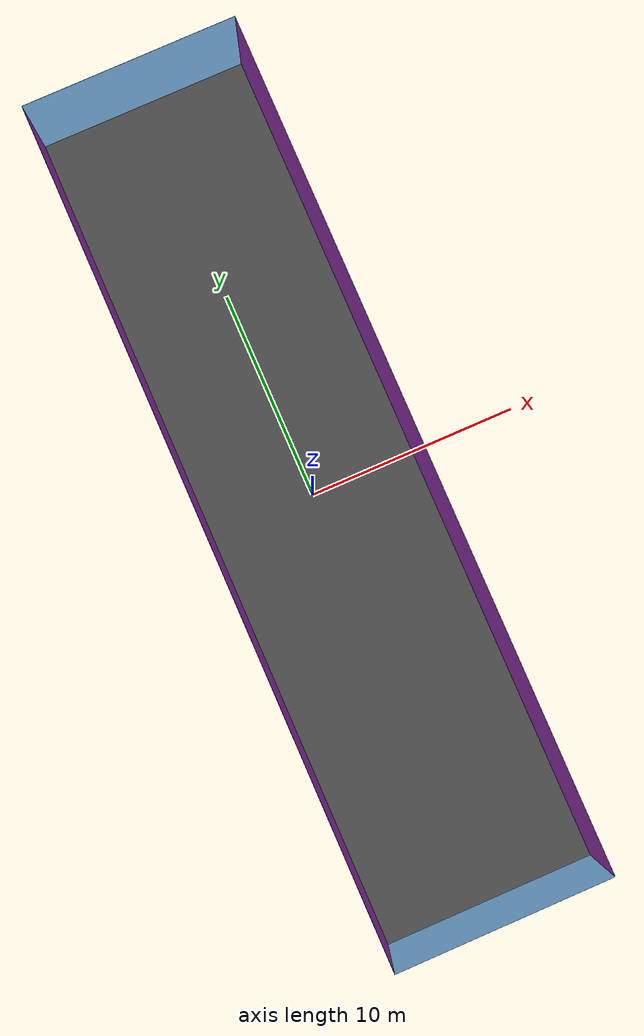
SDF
<sdf version="1.4">
 <world name="default">
  <include><uri>model://sun</uri></include>
  <model name="race_field">
   <static>true</static>
   <link name="field">
    <collision name="ground">
     <geometry><plane><normal>0 0 1</normal><size>10 40</size></plane></geometry>
    </collision>
    <collision name="wall0">
     <pose>-5 0 3 0 1.5707963 0</pose>
     <geometry><box><size>6 40 0.001</size></box></geometry>
    </collision>
    <collision name="wall1">
     <pose>0 20 3 1.5707963 1.5707963 0</pose>
     <geometry><box><size>6 10 0.001</size></box></geometry>
    </collision>
    <collision name="wall2">
     <pose>5 0 3 0 1.5707963 0</pose>
     <geometry><box><size>6 40 0.001</size></box></geometry>
    </collision>
    <collision name="wall3">
     <pose>0 -20 3 1.5707963 1.5707963 0</pose>
     <geometry><box><size>6 10 0.001</size></box></geometry>
    </collision>
    <visual name="ground">
     <geometry><plane><normal>0 0 1</normal><size>10 40</size></plane></geometry>
     <material>
      <script><uri>file://media/materials/scripts/gazebo.material</uri><name>Gazebo/DarkGrey</name></script>
     </material>
    </visual>
    <visual name="wall0">
     <pose>-5 0 3 0 1.5707963 0</pose>
     <geometry><plane><size>6 40</size></plane></geometry>
     <material>
      <script><uri>file://media/materials/scripts/gazebo.material</uri><name>Gazebo/Purple</name></script>
     </material>
    </visual>
    <visual name="wall1">
     <pose>0 20 3 1.5707963 1.5707963 0</pose>
     <geometry><plane><size>6 10</size></plane></geometry>
     <material>
      <script><uri>file://media/materials/scripts/gazebo.material</uri><name>Gazebo/SkyBlue</name></script>
     </material>
    </visual>
    <visual name="wall2">
     <pose>5 0 3 0 -1.5707963 0</pose>
     <geometry><plane><size>6 40</size></plane></geometry>
     <material>
      <script><uri>file://media/materials/scripts/gazebo.material</uri><name>Gazebo/Purple</name></script>
     </material>
    </visual>
    <visual name="wall3">
     <pose>0 -20 3 -1.5707963 1.5707963 0</pose>
     <geometry><plane><size>6 10</size></plane></geometry>
     <material>
      <script><uri>file://media/materials/scripts/gazebo.material</uri><name>Gazebo/SkyBlue</name></script>
     </material>
    </visual>
   </link>
  </model>
  <spherical_coordinates>
   <surface_model>EARTH_WGS84</surface_model>
   <latitude_deg>47.3667</latitude_deg>
   <longitude_deg>8.5500</longitude_deg>
   <elevation>500.0</elevation>
   <heading_deg>0</heading_deg>
  </spherical_coordinates>
  <physics type="ode">
   <ode>
    <solver><type>quick</type><iters>1000</iters><sor>1.3</sor></solver>
    <constraints>
     <cfm>0</cfm>
     <erp>0.2</erp>
     <contact_max_correcting_vel>100</contact_max_correcting_vel>
     <contact_surface_layer>0.001</contact_surface_layer>
    </constraints>
   </ode>
   <max_step_size>0.005</max_step_size>
   <real_time_factor>1</real_time_factor>
   <real_time_update_rate>200</real_time_update_rate>
   <gravity>0 0 -9.8</gravity>
  </physics>
 </world>
</sdf>
